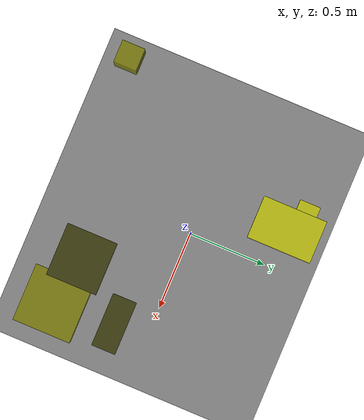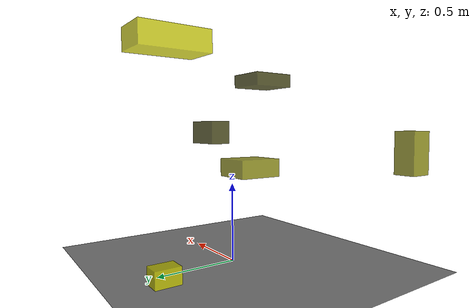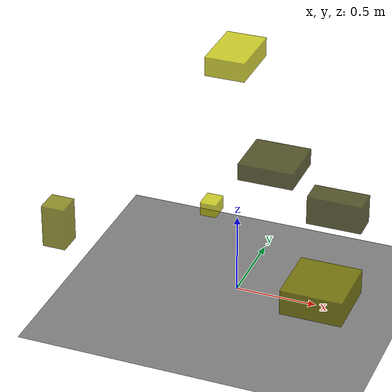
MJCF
<?xml version="1.0"?>
<mujoco model="obstacle_scene">
  <compiler angle="radian" coordinate="local"/>
  <option timestep="0.001" gravity="0 0 -9.81"/>

  <asset>
    <material name="obstacle_mat" rgba="0.8 0.8 0.0 0.8"/>
    <material name="ground_mat" rgba="0.5 0.5 0.5 1"/>
  </asset>

  <worldbody>
    <!-- Ground plane -->
    <geom name="ground" type="plane" size="3 3 0.1" material="ground_mat"/>

    <!-- Obstacles -->
    <body name="obstacle_0" pos="0.400312 -0.514510 1.217704">
      <geom name="obs_0" type="box" size="0.157755 0.151894 0.048663" rgba="0.2 0.2 0.0 0.8"/>
    </body>
    <body name="obstacle_1" pos="-0.811797 -0.740906 0.708714">
      <geom name="obs_1" type="box" size="0.069123 0.071631 0.129906" rgba="0.5 0.5 0.0 0.8"/>
    </body>
    <body name="obstacle_2" pos="-0.401434 0.611997 0.158132">
      <geom name="obs_2" type="box" size="0.053803 0.066089 0.044492" rgba="0.8 0.8 0.0 0.8"/>
    </body>
    <body name="obstacle_3" pos="0.679135 -0.208628 0.821365">
      <geom name="obs_3" type="box" size="0.161848 0.073550 0.086599" rgba="0.2 0.2 0.0 0.8"/>
    </body>
    <body name="obstacle_4" pos="0.716374 -0.599252 0.516088">
      <geom name="obs_4" type="box" size="0.179638 0.183387 0.075958" rgba="0.5 0.5 0.0 0.8"/>
    </body>
    <body name="obstacle_5" pos="-0.202557 0.491875 1.300280">
      <geom name="obs_5" type="box" size="0.124881 0.189602 0.061212" rgba="0.8 0.8 0.0 0.8"/>
    </body>
  </worldbody>
</mujoco>
